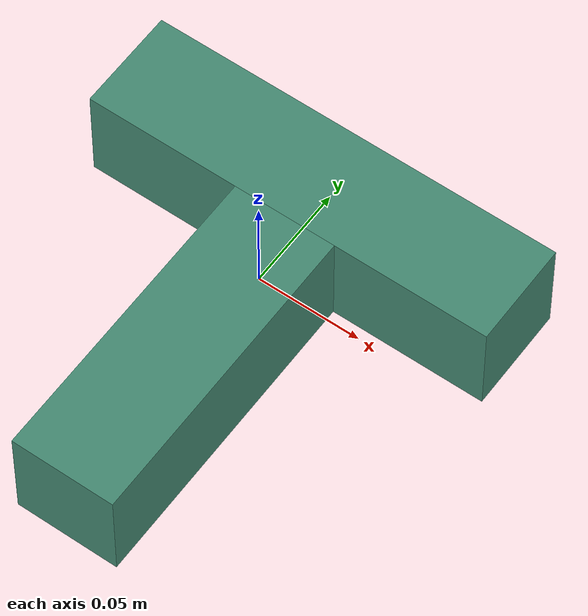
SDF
<?xml version="1.0"?>
<sdf version="1.7">
  <model name="t_pusher">
    <link name="t_pusher">
      <inertial>
        <pose>0.0 0.0 0.0 0.0 0.0 0.0</pose>
        <mass>0.153</mass>
        <inertia>
          <ixx>0.00082875</ixx>
          <ixy>0</ixy>
          <ixz>0</ixz>
          <iyy>0.00033696</iyy>
          <iyz>0</iyz>
          <izz>0.00110196</izz>
        </inertia>
      </inertial>
      <visual name="t_pusher_top_visual">
        <pose>0.0 0.04285714 0.0 0.0 0.0 0.0</pose>
        <geometry>
          <box>
            <size>0.2 0.05 0.05</size>
          </box>
        </geometry>
        <material>
          <diffuse> 0.26953125 0.54296875 0.453125 1. </diffuse>
        </material>
      </visual>
      <collision name="t_pusher_top_collision">
        <pose>0.0 0.04285714 0.0 0.0 0.0 0.0</pose>
        <geometry>
          <box>
            <size>0.2 0.05 0.05</size>
          </box>
        </geometry>
        <drake:proximity_properties>
          <drake:compliant_hydroelastic/>
          <drake:hunt_crossley_dissipation>3.0</drake:hunt_crossley_dissipation>
          <drake:hydroelastic_modulus>1e7</drake:hydroelastic_modulus>
          <drake:mesh_resolution_hint>0.005</drake:mesh_resolution_hint>
          <drake:mu_dynamic>0.5</drake:mu_dynamic>
          <drake:mu_static>0.5</drake:mu_static>
        </drake:proximity_properties>
      </collision>

      <visual name="t_pusher_bottom_visual">
        <pose>0.0 -0.05714286 0.0 0.0 0.0 0.0</pose>
        <geometry>
          <box>
            <size>0.05 0.15 0.05</size>
          </box>
        </geometry>
        <material>
          <diffuse> 0.26953125 0.54296875 0.453125 1. </diffuse>
        </material>
      </visual>
      <collision name="t_pusher_bottom_collision">
        <pose>0.0 -0.05714286 0.0 0.0 0.0 0.0</pose>
        <geometry>
          <box>
            <size>0.05 0.15 0.05</size>
          </box>
        </geometry>
        <drake:proximity_properties>
          <drake:compliant_hydroelastic/>
          <drake:hunt_crossley_dissipation>1.25</drake:hunt_crossley_dissipation>
          <drake:hydroelastic_modulus>1e5</drake:hydroelastic_modulus>
          <drake:mesh_resolution_hint>0.005</drake:mesh_resolution_hint>
          <drake:mu_dynamic>0.5</drake:mu_dynamic>
          <drake:mu_static>0.5</drake:mu_static>
        </drake:proximity_properties>
      </collision>
    </link>
  </model>
</sdf>
